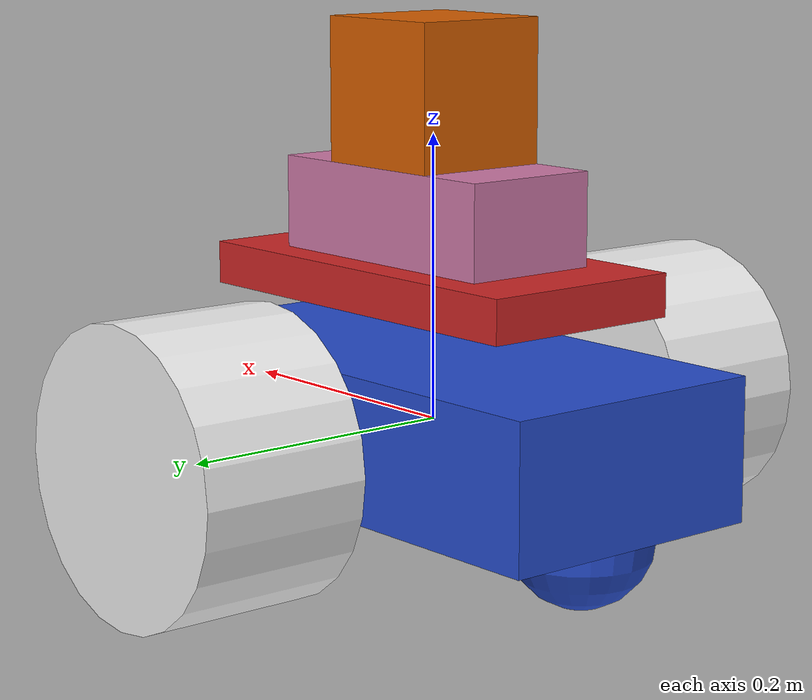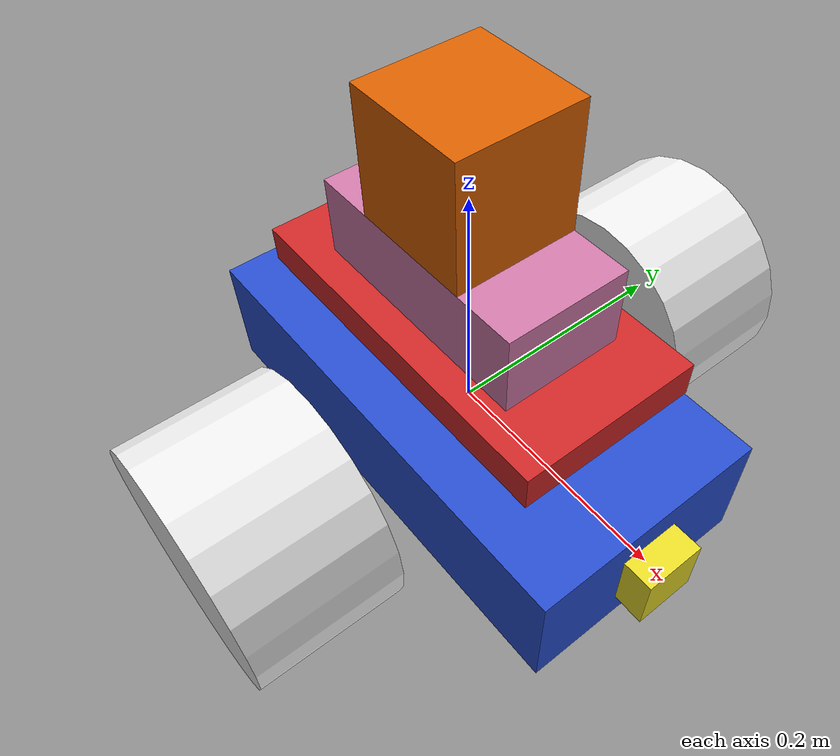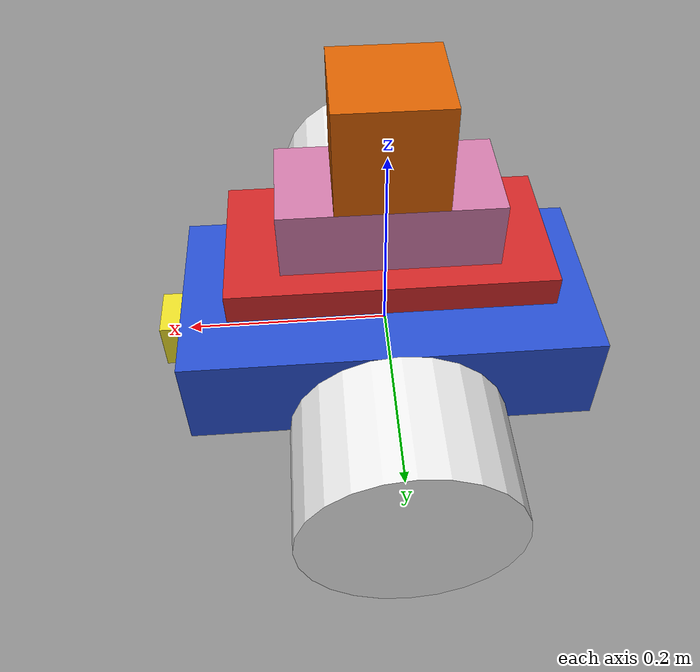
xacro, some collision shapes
<?xml version='1.0'?>

<robot name="my_robot" xmlns:xacro="http://www.ros.org/wiki/xacro">

  <xacro:include filename="$(find my_robot)/urdf/my_robot.gazebo" />

  <link name="robot_footprint"></link>

  <joint name="robot_footprint_joint" type="fixed">
    <origin xyz="0 0 0" rpy="0 0 0" />
    <parent link="robot_footprint"/>
    <child link="chassis" />
  </joint>

  <link name='chassis'>
    <pose>0 0 0.1 0 0 0</pose>

    <inertial>
      <mass value="15.0"/>
      <origin xyz="0.0 0 0" rpy=" 0 0 0"/>
      <inertia
          ixx="0.1" ixy="0" ixz="0"
          iyy="0.1" iyz="0"
          izz="0.1"
      />
    </inertial>

    <collision name='collision'>
      <origin xyz="0 0 0" rpy=" 0 0 0"/>
      <geometry>
        <box size=".4 .2 .1"/>
      </geometry>
    </collision>

    <visual name='chassis_visual'>
      <origin xyz="0 0 0" rpy=" 0 0 0"/>
      <geometry>
        <box size=".4 .2 .1"/>
      </geometry>
    </visual>

    <collision name='back_caster_collision'>
      <origin xyz="-0.15 0 -0.05" rpy=" 0 0 0"/>
      <geometry>
        <sphere radius="0.0499"/>
      </geometry>
    </collision>

    <visual name='back_caster_visual'>
      <origin xyz="-0.15 0 -0.05" rpy=" 0 0 0"/>
      <geometry>
        <sphere radius="0.05"/>
      </geometry>
    </visual>

    <collision name='front_caster_collision'>
      <origin xyz="0.15 0 -0.05" rpy=" 0 0 0"/>
      <geometry>
        <sphere radius="0.0499"/>
      </geometry>
    </collision>

    <visual name='front_caster_visual'>
      <origin xyz="0.15 0 -0.05" rpy=" 0 0 0"/>
      <geometry>
        <sphere radius="0.05"/>
      </geometry>
    </visual>

  </link>

  <gazebo reference="chassis">
    <material>Gazebo/Blue</material>
  </gazebo>

  <link name='left_wheel'>
    <inertial>
      <mass value="5.0"/>
      <origin xyz="0.0 0 0" rpy=" 0 1.5707 1.5707"/>
      <inertia
          ixx="0.1" ixy="0" ixz="0"
          iyy="0.1" iyz="0"
          izz="0.1"
      />
    </inertial>

    <collision name='left_wheel_collision'>
      <origin xyz="0 0 0" rpy=" 0 1.5707 1.5707"/>
      <geometry>
        <cylinder radius="0.1" length="0.12"/>
      </geometry>
    </collision>

    <visual name='left_wheel_visual'>
      <origin xyz="0 0 0" rpy=" 0 1.5707 1.5707"/>
      <geometry>
        <cylinder radius="0.1" length="0.12"/>
      </geometry>
    </visual>
  </link>

  <joint type="continuous" name="left_wheel_hinge">
    <origin xyz="0 0.2 0" rpy="0 0 0"/>
    <child link="left_wheel"/>
    <parent link="chassis"/>
    <axis xyz="0 1 0" rpy="0 0 0"/>
    <limit effort="10000" velocity="1000"/>
    <dynamics damping="1.0" friction="1.0"/>
  </joint>

  <gazebo reference="left_wheel">
    <material>Gazebo/White</material>
  </gazebo>

  <link name='right_wheel'>
    <inertial>
      <mass value="5.0"/>
      <origin xyz="0.0 0 0" rpy=" 0 1.5707 1.5707"/>
      <inertia
          ixx="0.1" ixy="0" ixz="0"
          iyy="0.1" iyz="0"
          izz="0.1"
      />
    </inertial>

    <collision name='right_wheel_collision'>
      <origin xyz="0 0 0" rpy=" 0 1.5707 1.5707"/>
      <geometry>
        <cylinder radius="0.1" length="0.12"/>
      </geometry>
    </collision>

    <visual name='right_wheel_visual'>
      <origin xyz="0 0 0" rpy=" 0 1.5707 1.5707"/>
      <geometry>
        <cylinder radius="0.1" length="0.12"/>
      </geometry>
    </visual>
  </link>

  <joint type="continuous" name="right_wheel_hinge">
    <origin xyz="0 -0.2 0" rpy="0 0 0"/>
    <child link="right_wheel"/>
    <parent link="chassis"/>
    <axis xyz="0 1 0" rpy="0 0 0"/>
    <limit effort="10000" velocity="1000"/>
    <dynamics damping="1.0" friction="1.0"/>
  </joint>

  <gazebo reference="right_wheel">
    <material>Gazebo/White</material>
  </gazebo>

  <link name='camera'>
    <inertial>
      <mass value="0.1"/>
      <origin xyz="0.0 0 0" rpy=" 0 0 0"/>
      <inertia
          ixx="1e-6" ixy="0" ixz="0"
          iyy="1e-6" iyz="0"
          izz="1e-6"
      />
    </inertial>

    <collision name='camera_collision'>
      <origin xyz="0 0 0" rpy=" 0 0 0"/>
      <geometry>
        <box size="0.05 0.05 0.05"/>
      </geometry>
    </collision>

    <visual name='camera_visual'>
      <origin xyz="0 0 0" rpy=" 0 0 0"/>
      <geometry>
        <box size="0.05 0.05 0.05"/>
      </geometry>
    </visual>
  </link>

  <joint type="fixed" name="camera_joint">
    <origin xyz="0.2 0 0" rpy="0 0 0"/>
    <child link="camera"/>
    <parent link="chassis"/>
    <axis xyz="0 1 0" rpy="0 0 0"/>
  </joint>

  <gazebo reference="camera">
    <material>Gazebo/Yellow</material>
  </gazebo>

  <link name='hokuyo'>
    <pose>0 0 0 0 0 0</pose>

    <inertial>
      <mass value="1e-5"/>
      <origin xyz="0.0 0 0" rpy=" 0 0 0"/>
      <inertia
          ixx="1e-6" ixy="0" ixz="0"
          iyy="1e-6" iyz="0"
          izz="1e-6"
      />
    </inertial>

    <collision name='hokuyo_collision'>
      <origin xyz="0 0 0" rpy=" 0 0 0"/>
      <geometry>
        <box size="0.1 0.1 0.1"/>
      </geometry>
    </collision>

    <visual name='hokuyo_visual'>
      <origin xyz="0 0 0" rpy=" 0 0 0"/>
      <geometry>
        <mesh filename="package://my_robot/meshes/hokuyo.dae"/>
      </geometry>
    </visual>
  </link>

  <joint type="fixed" name="hokuyo_joint">
    <origin xyz="0 0 0.1" rpy="0 0 0"/>
    <child link="hokuyo"/>
    <parent link="body"/>
    <axis xyz="0 1 0" rpy="0 0 0"/>
  </joint>

  <joint name="body_thin_body_joint" type="fixed">
    <origin xyz="0 0 0.03" rpy="0 0 0" />
    <parent link="thin_body"/>
    <child link="body" />
  </joint>

  <link name='body'>
    <pose>0 0 0.1 0 0 0</pose>

    <inertial>
      <mass value="5.0"/>
      <origin xyz="0.0 0 0" rpy=" 0 0 0"/>
      <inertia
          ixx="0.1" ixy="0" ixz="0"
          iyy="0.1" iyz="0"
          izz="0.1"
      />
    </inertial>

    <collision name='collision'>
      <origin xyz="0 0 0" rpy=" 0 0 0"/>
      <geometry>
        <box size=".2 .1 .1"/>
      </geometry>
    </collision>

    <visual name='body_visual'>
      <origin xyz="0 0 0" rpy=" 0 0 0"/>
      <geometry>
        <box size=".2 .1 .1"/>
      </geometry>
    </visual>
  </link>

  <joint name="thin_body_chassis_joint" type="fixed">
    <origin xyz="0 0 0.1" rpy="0 0 0" />
    <parent link="chassis"/>
    <child link="thin_body" />
  </joint>

  <link name='thin_body'>
    <pose>0 0 0.1 0 0 0</pose>

    <inertial>
      <mass value="1.0"/>
      <origin xyz="0.0 0 0" rpy=" 0 0 0"/>
      <inertia
          ixx="0.1" ixy="0" ixz="0"
          iyy="0.1" iyz="0"
          izz="0.1"
      />
    </inertial>

    <collision name='collision'>
      <origin xyz="0 0 0" rpy=" 0 0 0"/>
      <geometry>
        <box size=".3 .15 .03"/>
      </geometry>
    </collision>

    <visual name='thin_body_visual'>
      <origin xyz="0 0 0" rpy=" 0 0 0"/>
      <geometry>
        <box size=".3 .15 .03"/>
      </geometry>
    </visual>
  </link>

  <gazebo reference="thin_body">
    <material>Gazebo/Red</material>
  </gazebo>

  <joint name="camera_optical_joint" type="fixed">
    <origin xyz="0 0 0" rpy="-1.5707 0 -1.5707"/>
    <parent link="camera"/>
    <child link="camera_link_optical"/>
  </joint>

  <link name="camera_link_optical">
  </link>

</robot>
